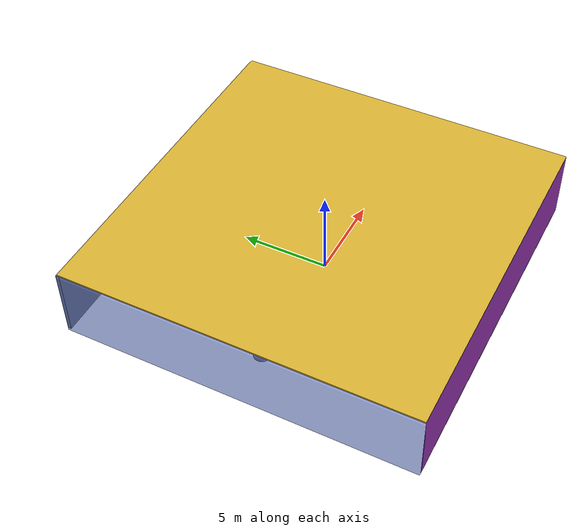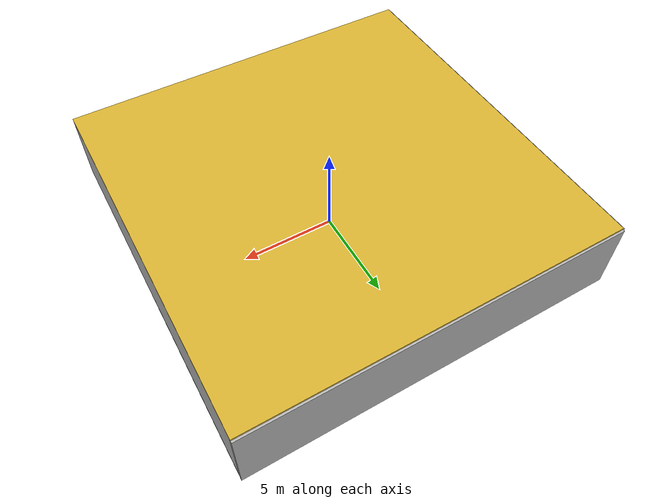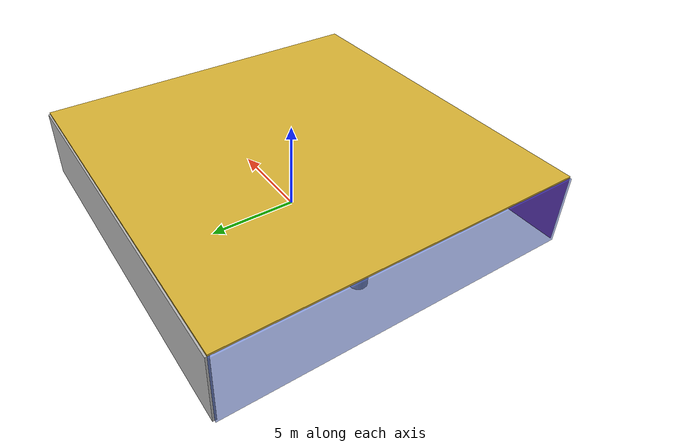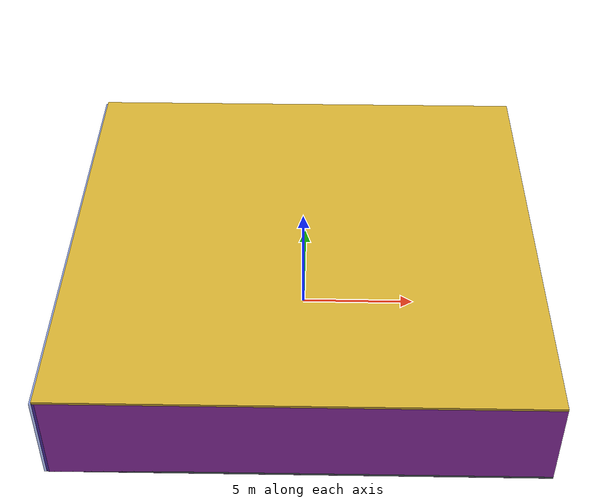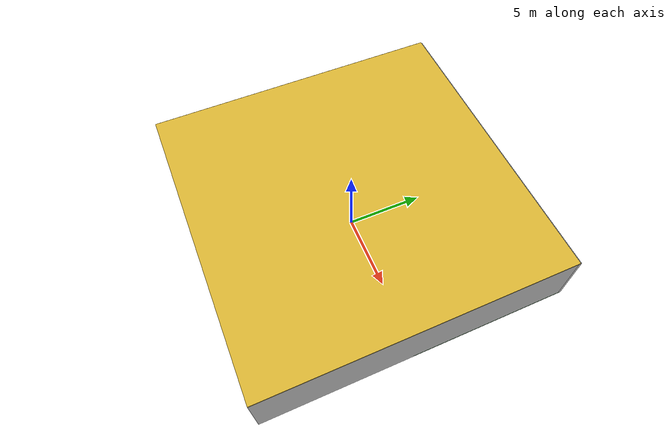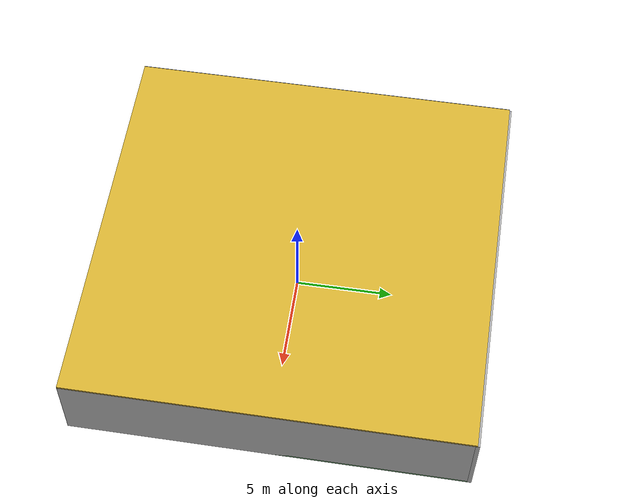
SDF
<sdf version="1.4">
 <world name="default">
  <physics type="ode">
   <max_step_size>0.001</max_step_size>
   <real_time_factor>1</real_time_factor>
   <real_time_update_rate>1000</real_time_update_rate>
   <gravity>0 0 -9.8</gravity>
  </physics>
  <scene><ambient>0.4 0.4 0.4 1</ambient><background>0.7 0.7 0.7 1</background><shadows>1</shadows></scene>
  <model name="Surrounding">
   <static>1</static>
   <link name="Ceiling">
    <collision name="Ceiling_Collision"><geometry><box><size>20 20 0.1</size></box></geometry></collision>
    <visual name="Ceiling_Visual">
     <geometry><box><size>20 20 0.1</size></box></geometry>
     <material>
      <script><uri>file://media/materials/scripts/gazebo.material</uri><name>Gazebo/Gold</name></script>
     </material>
    </visual>
    <pose>0 0 4.05 0 0 0</pose>
   </link>
   <link name="Wall_South">
    <collision name="Wall_South_Collision">
     <geometry><box><size>20 0 4</size></box></geometry>
     <pose>0 0 2 0 -0 0</pose>
    </collision>
    <visual name="Wall_South_Visual">
     <pose>0 0 2 0 -0 0</pose>
     <geometry><box><size>20 0 4</size></box></geometry>
     <material>
      <script><uri>file://media/materials/scripts/gazebo.material</uri><name>Gazebo/PurpleGlow</name></script>
     </material>
    </visual>
    <velocity_decay><linear>0</linear><angular>0</angular></velocity_decay>
    <pose>0 -10 0 0 -0 0</pose>
   </link>
   <link name="Wall_East">
    <collision name="Wall_21_Collision">
     <geometry><box><size>20 0 4</size></box></geometry>
     <pose>0 0 2 0 -0 0</pose>
    </collision>
    <visual name="Wall_21_Visual">
     <pose>0 0 2 0 -0 0</pose>
     <geometry><box><size>20 0 4</size></box></geometry>
     <material>
      <script><uri>file://media/materials/scripts/gazebo.material</uri><name>Gazebo/CloudySky</name></script>
     </material>
    </visual>
    <velocity_decay><linear>0</linear><angular>0</angular></velocity_decay>
    <pose>10 0 0 0 -0 1.5708</pose>
   </link>
   <link name="Wall_North">
    <collision name="Wall_22_Collision">
     <geometry><box><size>20 0.2 4</size></box></geometry>
     <pose>0 0 2 0 -0 0</pose>
    </collision>
    <visual name="Wall_22_Visual">
     <pose>0 0 2 0 -0 0</pose>
     <geometry><box><size>20 0.2 4</size></box></geometry>
     <material>
      <script><uri>file://media/materials/scripts/gazebo.material</uri><name>Gazebo/LightOff</name></script>
     </material>
    </visual>
    <velocity_decay><linear>0</linear><angular>0</angular></velocity_decay>
    <pose>0 10 0 0 -0 0</pose>
   </link>
   <link name="Wall_West">
    <collision name="Wall_23_Collision">
     <geometry><box><size>20 0.2 4</size></box></geometry>
     <pose>0 0 2 0 -0 0</pose>
    </collision>
    <visual name="Wall_23_Visual">
     <pose>0 0 2 0 -0 0</pose>
     <geometry><box><size>20 0.2 4</size></box></geometry>
     <material>
      <script><uri>file://media/materials/scripts/gazebo.material</uri><name>Gazebo/BlueTransparent</name></script>
     </material>
    </visual>
    <velocity_decay><linear>0</linear><angular>0</angular></velocity_decay>
    <pose>-10 0 0 0 0 -1.5708</pose>
   </link>
   <link name="Ground_link">
    <collision name="collision">
     <pose>0 0 .05 0 -0 0</pose>
     <geometry><box><size>20 20 0.1</size></box></geometry>
    </collision>
    <visual name="visual">
     <pose>0 0 .05 0 -0 0</pose>
     <geometry><box><size>20 20 0.1</size></box></geometry>
     <material>
      <script><uri>file://media/materials/scripts/gazebo.material</uri><name>Gazebo/GreenTransparent</name></script>
     </material>
    </visual>
   </link>
   <static>1</static>
  </model>
  <spherical_coordinates>
   <surface_model>EARTH_WGS84</surface_model>
   <latitude_deg>0</latitude_deg>
   <longitude_deg>0</longitude_deg>
   <elevation>0</elevation>
   <heading_deg>0</heading_deg>
  </spherical_coordinates>
  <light name="lightball_0" type="diffuse">
   <diffuse>0.8 0.8 0.8 1</diffuse>
   <specular>0.2 0.2 0.2 1</specular>
   <attenuation>
    <range>100</range>
    <constant>0.7</constant>
    <linear>0.01</linear>
    <quadratic>0.001</quadratic>
   </attenuation>
   <direction>-0.5 0.1 -0.9</direction>
   <pose>7.1229206361 -0.307471380585 3.60209983434 0 0 0</pose>
  </light>
  <light name="lightball_1" type="diffuse">
   <diffuse>0.8 0.8 0.8 1</diffuse>
   <specular>0.2 0.2 0.2 1</specular>
   <attenuation>
    <range>100</range>
    <constant>0.7</constant>
    <linear>0.01</linear>
    <quadratic>0.001</quadratic>
   </attenuation>
   <direction>-0.5 0.1 -0.9</direction>
   <pose>9.64368090815 -2.70732188863 1.05894427354 0 0 0</pose>
  </light>
  <light name="lightball_2" type="diffuse">
   <diffuse>0.8 0.8 0.8 1</diffuse>
   <specular>0.2 0.2 0.2 1</specular>
   <attenuation>
    <range>100</range>
    <constant>0.7</constant>
    <linear>0.01</linear>
    <quadratic>0.001</quadratic>
   </attenuation>
   <direction>-0.5 0.1 -0.9</direction>
   <pose>-7.05821752435 9.71758634796 1.00414615346 0 0 0</pose>
  </light>
  <include>
   <uri>model://textured_shapes</uri>
   <pose>-5.45348350106 -0.572533907363 0 0 0 0.947964748066</pose>
  </include>
  <include>
   <uri>model://textured_shapes</uri>
   <pose>-4.60339414097 5.30949880536 0 0 0 0.030507801337</pose>
  </include>
  <include><uri>model://cabinet</uri><pose>-1.3006616653 -8.08250036177 0 0 0 1.93304344664</pose></include>
  <include><uri>model://cabinet</uri><pose>-1.75617148396 -1.01105626154 0 0 0 1.46079989854</pose></include>
  <include>
   <uri>model://robocup_3Dsim_goal</uri>
   <pose>1.81719770309 -1.9935392264 0 0 0 2.9785255646</pose>
  </include>
  <include><uri>model://table</uri><pose>5.32758330218 -3.35919101849 0 0 0 2.42582273988</pose></include>
  <include>
   <uri>model://robocup_3Dsim_goal</uri>
   <pose>5.05376183835 0.386133741961 0 0 0 2.1636185056</pose>
  </include>
  <include>
   <uri>model://construction_cone</uri>
   <pose>7.24086674606 8.66975009581 0 0 0 1.53472428825</pose>
  </include>
 </world>
</sdf>

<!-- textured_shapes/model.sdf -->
<sdf version="1.6">
  <model name="textured_shapes">
    <pose>0 0 0.5 0 0 0</pose>
    <link name="box">
      <pose>0 -1.5 0 0 0 0</pose>
      <collision name="collision">
        <geometry>
          <box>
            <size>1 1 1</size>
          </box>
        </geometry>
      </collision>
      <visual name="visual">
        <geometry>
          <box>
            <size>1 1 1</size>
          </box>
        </geometry>
        <material>
          <script>
            <uri>model://../model_source/models/textured_shapes/materials/scripts</uri>
            <uri>model://../model_source/models/textured_shapes/materials/textures</uri>
            <name>TexturedShape/Squares</name>
          </script>
        </material>
      </visual>
    </link>
    <link name="sphere">
      <collision name="collision">
        <geometry>
          <sphere>
            <radius>0.5</radius>
          </sphere>
        </geometry>
      </collision>
      <visual name="visual">
        <geometry>
          <sphere>
            <radius>0.5</radius>
          </sphere>
        </geometry>
        <material>
          <script>
            <uri>model://../model_source/models/textured_shapes/materials/scripts</uri>
            <uri>model://../model_source/models/textured_shapes/materials/textures</uri>
            <name>TexturedShape/Squares</name>
          </script>
        </material>
      </visual>
    </link>
    <link name="cylinder">
      <pose>0 1.5 0 0 0 0</pose>
      <collision name="collision">
        <geometry>
          <cylinder>
            <radius>0.5</radius>
            <length>1</length>
          </cylinder>
        </geometry>
      </collision>
      <visual name="visual">
        <geometry>
          <cylinder>
            <radius>0.5</radius>
            <length>1</length>
          </cylinder>
        </geometry>
        <material>
          <script>
            <uri>model://../model_source/models/textured_shapes/materials/scripts</uri>
            <uri>model://../model_source/models/textured_shapes/materials/textures</uri>
            <name>TexturedShape/Squares</name>
          </script>
        </material>
      </visual>
    </link>
  </model>
</sdf>

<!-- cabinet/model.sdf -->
<sdf version="1.5">
  <model name="cabinet">
    <static>true</static>
    <link name="cabinet_bottom_plate">
      <inertial>
        <pose>0 0 -1 0 0 0</pose>
        <inertia>
          <ixx>2.050000</ixx>
          <ixy>0</ixy>
          <ixz>0</ixz>
          <iyy>2.050000</iyy>
          <iyz>0</iyz>
          <izz>2.050000</izz>
        </inertia>
        <mass>25.000000</mass>
      </inertial>
      <collision name="cabinet_bottom_plate_geom">
        <pose>0 0 0.010000 0 0 0</pose>
        <geometry>
          <box>
            <size>0.450000 0.450000 0.020000</size>
          </box>
        </geometry>
      </collision>
      <visual name="cabinet_bottom_plate_geom_visual">
        <pose>0 0 0.010000 0 0 0</pose>
        <geometry>
          <box>
            <size>0.450000 0.450000 0.020000</size>
          </box>
        </geometry>
        <material>
          <script>
            <uri>model://media/materials/scripts/gazebo.material</uri>
            <name>Gazebo/Wood</name>
          </script>
        </material>
      </visual>
      <collision name="cabinet_bottom_plate_geom_cabinet_back_plate">
        <pose>0.235000 0 0.510000 0 0 0</pose>
        <geometry>
          <box>
            <size>0.020000 0.450000 1.020000</size>
          </box>
        </geometry>
      </collision>
      <visual name="cabinet_bottom_plate_geom_cabinet_back_plate_visual">
        <pose>0.235000 0 0.510000 0 0 0</pose>
        <geometry>
          <box>
            <size>0.020000 0.450000 1.020000</size>
          </box>
        </geometry>
        <material>
          <script>
            <uri>model://media/materials/scripts/gazebo.material</uri>
            <name>Gazebo/Wood</name>
          </script>
        </material>
      </visual>
      <collision name="cabinet_bottom_plate_geom_cabinet_left_plate">
        <pose>0 0.235000 0.510000 0 0 0</pose>
        <geometry>
          <box>
            <size>0.450000 0.020000 1.020000</size>
          </box>
        </geometry>
      </collision>
      <visual name="cabinet_bottom_plate_geom_cabinet_left_plate_visual">
        <pose>0 0.235000 0.510000 0 0 0</pose>
        <geometry>
          <box>
            <size>0.450000 0.020000 1.020000</size>
          </box>
        </geometry>
        <material>
          <script>
            <uri>model://media/materials/scripts/gazebo.material</uri>
            <name>Gazebo/Wood</name>
          </script>
        </material>
      </visual>
      <collision name="cabinet_bottom_plate_geom_cabinet_middle_plate">
        <pose>0 0 0.510000 0 0 0</pose>
        <geometry>
          <box>
            <size>0.450000 0.450000 0.020000</size>
          </box>
        </geometry>
      </collision>
      <visual name="cabinet_bottom_plate_geom_cabinet_middle_plate_visual">
        <pose>0 0 0.510000 0 0 0</pose>
        <geometry>
          <box>
            <size>0.450000 0.450000 0.020000</size>
          </box>
        </geometry>
        <material>
          <script>
            <uri>model://media/materials/scripts/gazebo.material</uri>
            <name>Gazebo/Wood</name>
          </script>
        </material>
      </visual>
      <collision name="cabinet_bottom_plate_geom_cabinet_right_plate">
        <pose>0 -0.235000 0.510000 0 0 0</pose>
        <geometry>
          <box>
            <size>0.450000 0.020000 1.020000</size>
          </box>
        </geometry>
      </collision>
      <visual name="cabinet_bottom_plate_geom_cabinet_right_plate_visual">
        <pose>0 -0.235000 0.510000 0 0 0</pose>
        <geometry>
          <box>
            <size>0.450000 0.020000 1.020000</size>
          </box>
        </geometry>
        <material>
          <script>
            <uri>model://media/materials/scripts/gazebo.material</uri>
            <name>Gazebo/Wood</name>
          </script>
        </material>
      </visual>
      <collision name="cabinet_bottom_plate_geom_cabinet_top_plate">
        <pose>0 0 1.010000 0 0 0</pose>
        <geometry>
          <box>
            <size>0.450000 0.450000 0.020000</size>
          </box>
        </geometry>
      </collision>
      <visual name="cabinet_bottom_plate_geom_cabinet_top_plate_visual">
        <pose>0 0 1.010000 0 0 0</pose>
        <geometry>
          <box>
            <size>0.450000 0.450000 0.020000</size>
          </box>
        </geometry>
        <material>
          <script>
            <uri>model://media/materials/scripts/gazebo.material</uri>
            <name>Gazebo/Wood</name>
          </script>
        </material>
      </visual>
    </link>
  </model>
</sdf>

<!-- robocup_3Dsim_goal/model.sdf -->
<sdf version="1.5">
  <model name="robocup_3d_goal">
    <static>true</static>
    <link name="left_post">
      <pose>0 1.05 0.45 0 0 0</pose>
      <collision name="collision">
        <geometry>
          <cylinder>
            <radius>0.05</radius>
            <length>0.9</length>
          </cylinder>
        </geometry>
      </collision>
      <visual name="visual">
        <geometry>
          <cylinder>
            <radius>0.05</radius>
            <length>0.9</length>
          </cylinder>
        </geometry>
        <material>
          <script>
            <uri>file://media/materials/scripts/gazebo.material</uri>
            <name>Gazebo/ZincYellow</name>
          </script>
        </material>
      </visual>
    </link>
    <link name="left_support_horiz_lower">
      <pose>0.30 1.05 0.01 0 0 0</pose>
      <collision name="collision">
        <geometry>
          <box>
            <size>0.50 0.02 0.02</size>
          </box>
        </geometry>
      </collision>
      <visual name="visual">
        <geometry>
          <box>
            <size>0.50 0.02 0.02</size>
          </box>
        </geometry>
        <material>
          <script>
            <uri>file://media/materials/scripts/gazebo.material</uri>
            <name>Gazebo/White</name>
          </script>
        </material>
      </visual>
    </link>
    <link name="left_support_horiz_upper">
      <pose>0.30 1.05 0.79 0 0 0</pose>
      <collision name="collision">
        <geometry>
          <box>
            <size>0.50 0.02 0.02</size>
          </box>
        </geometry>
      </collision>
      <visual name="visual">
        <geometry>
          <box>
            <size>0.50 0.02 0.02</size>
          </box>
        </geometry>
        <material>
          <script>
            <uri>file://media/materials/scripts/gazebo.material</uri>
            <name>Gazebo/White</name>
          </script>
        </material>
      </visual>
    </link>
    <link name="left_support_vertical">
      <pose>0.56 1.05 0.4 0 1.5708 0</pose>
      <collision name="collision">
        <geometry>
          <box>
            <size>0.80 0.02 0.02</size>
          </box>
        </geometry>
      </collision>
      <visual name="visual">
        <geometry>
          <box>
            <size>0.80 0.02 0.02</size>
          </box>
        </geometry>
        <material>
          <script>
            <uri>file://media/materials/scripts/gazebo.material</uri>
            <name>Gazebo/White</name>
          </script>
        </material>
      </visual>
    </link>
    <link name="right_support_horiz_lower">
      <pose>0.30 -1.05 0.01 0 0 0</pose>
      <collision name="collision">
        <geometry>
          <box>
            <size>0.50 0.02 0.02</size>
          </box>
        </geometry>
      </collision>
      <visual name="visual">
        <geometry>
          <box>
            <size>0.50 0.02 0.02</size>
          </box>
        </geometry>
        <material>
          <script>
            <uri>file://media/materials/scripts/gazebo.material</uri>
            <name>Gazebo/White</name>
          </script>
        </material>
      </visual>
    </link>
    <link name="right_support_horiz_upper">
      <pose>0.30 -1.05 0.79 0 0 0</pose>
      <collision name="collision">
        <geometry>
          <box>
            <size>0.50 0.02 0.02</size>
          </box>
        </geometry>
      </collision>
      <visual name="visual">
        <geometry>
          <box>
            <size>0.50 0.02 0.02</size>
          </box>
        </geometry>
        <material>
          <script>
            <uri>file://media/materials/scripts/gazebo.material</uri>
            <name>Gazebo/White</name>
          </script>
        </material>
      </visual>
    </link>
    <link name="right_support_vertical">
      <pose>0.56 -1.05 0.4 0 1.5708 0</pose>
      <collision name="collision">
        <geometry>
          <box>
            <size>0.80 0.02 0.02</size>
          </box>
        </geometry>
      </collision>
      <visual name="visual">
        <geometry>
          <box>
            <size>0.80 0.02 0.02</size>
          </box>
        </geometry>
        <material>
          <script>
            <uri>file://media/materials/scripts/gazebo.material</uri>
            <name>Gazebo/White</name>
          </script>
        </material>
      </visual>
    </link>
    <link name="center_support_horiz_lower">
      <pose>0.56 0 0.01 0 1.5708 0</pose>
      <collision name="collision">
        <geometry>
          <box>
            <size>0.02 2.08 0.02</size>
          </box>
        </geometry>
      </collision>
      <visual name="visual">
        <geometry>
          <box>
            <size>0.02 2.08 0.02</size>
          </box>
        </geometry>
        <material>
          <script>
            <uri>file://media/materials/scripts/gazebo.material</uri>
            <name>Gazebo/White</name>
          </script>
        </material>
      </visual>
    </link>
    <link name="center_support_horiz_upper">
      <pose>0.56 0 0.79 0 1.5708 0</pose>
      <collision name="collision">
        <geometry>
          <box>
            <size>0.02 2.08 0.02</size>
          </box>
        </geometry>
      </collision>
      <visual name="visual">
        <geometry>
          <box>
            <size>0.02 2.08 0.02</size>
          </box>
        </geometry>
        <material>
          <script>
            <uri>file://media/materials/scripts/gazebo.material</uri>
            <name>Gazebo/White</name>
          </script>
        </material>
      </visual>
    </link>
    <link name="right_post">
      <pose>0 -1.05 0.45 0 0 0</pose>
      <collision name="collision">
        <geometry>
          <cylinder>
            <radius>0.05</radius>
            <length>0.9</length>
          </cylinder>
        </geometry>
      </collision>
      <visual name="visual">
        <geometry>
          <cylinder>
            <radius>0.05</radius>
            <length>0.9</length>
          </cylinder>
        </geometry>
        <material>
          <script>
            <uri>file://media/materials/scripts/gazebo.material</uri>
            <name>Gazebo/ZincYellow</name>
          </script>
        </material>
      </visual>
    </link>
    <link name="crossbar">
      <pose>0 0 0.85 1.57 1.57 0</pose>
      <collision name="collision">
        <geometry>
          <cylinder>
            <radius>0.05</radius>
            <length>2.0</length>
          </cylinder>
        </geometry>
      </collision>
      <visual name="visual">
        <geometry>
          <cylinder>
            <radius>0.05</radius>
            <length>2.0</length>
          </cylinder>
        </geometry>
        <material>
          <script>
            <uri>file://media/materials/scripts/gazebo.material</uri>
            <name>Gazebo/ZincYellow</name>
          </script>
        </material>
      </visual>
    </link>
    <link name="center_net">
      <pose>0.56 0 0.40 0 0 0</pose>
      <collision name="collision">
        <geometry>
          <box>
            <size>0.01 2.1 0.80</size>
          </box>
        </geometry>
      </collision>
      <visual name="visual">
        <geometry>
          <box>
            <size>0.01 2.1 0.80</size>
          </box>
        </geometry>
        <material>
          <script>
            <uri>model://../model_source/models/robocup09_spl_field/materials/scripts/</uri>
            <uri>model://../model_source/models/robocup09_spl_field/materials/textures/</uri>
            <name>RoboCup/Net</name>
          </script>
        </material>
      </visual>
    </link>
    <link name="left_net">
      <pose>0.30 1.05 0.40 0 0 0</pose>
      <collision name="collision">
        <geometry>
          <box>
            <size>0.50 0.01 0.76</size>
          </box>
        </geometry>
      </collision>
      <visual name="visual">
        <geometry>
          <box>
            <size>0.50 0.01 0.76</size>
          </box>
        </geometry>
        <material>
          <script>
            <uri>model://../model_source/models/robocup09_spl_field/materials/scripts/</uri>
            <uri>model://../model_source/models/robocup09_spl_field/materials/textures/</uri>
            <name>RoboCup/Net</name>
          </script>
        </material>
      </visual>
    </link>
    <link name="right_net">
      <pose>0.30 -1.05 0.40 0 0 0</pose>
      <collision name="collision">
        <geometry>
          <box>
            <size>0.50 0.01 0.76</size>
          </box>
        </geometry>
      </collision>
      <visual name="visual">
        <geometry>
          <box>
            <size>0.50 0.01 0.76</size>
          </box>
        </geometry>
        <material>
          <script>
            <uri>model://../model_source/models/robocup09_spl_field/materials/scripts/</uri>
            <uri>model://../model_source/models/robocup09_spl_field/materials/textures/</uri>
            <name>RoboCup/Net</name>
          </script>
        </material>
      </visual>
    </link>
  </model>
</sdf>

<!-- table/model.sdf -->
<sdf version="1.5">
  <model name="table">
    <static>true</static>
    <link name="link">
      <collision name="surface">
        <pose>0 0 1.0 0 0 0</pose>
        <geometry>
          <box>
            <size>1.5 0.8 0.03</size>
          </box>
        </geometry>
        <surface>
          <friction>
            <ode>
              <mu>0.6</mu>
              <mu2>0.6</mu2>
            </ode>
          </friction>
        </surface>
      </collision>
      <visual name="visual1">
        <pose>0 0 1.0 0 0 0</pose>
        <geometry>
          <box>
            <size>1.5 0.8 0.03</size>
          </box>
        </geometry>
        <material>
          <script>
            <uri>model://media/materials/scripts/gazebo.material</uri>
            <name>Gazebo/Wood</name>
          </script>
        </material>
      </visual>
      <collision name="front_left_leg">
        <pose>0.68 0.38 0.5 0 0 0</pose>
        <geometry>
          <cylinder>
            <radius>0.02</radius>
            <length>1.0</length>
          </cylinder>
        </geometry>
      </collision>
      <visual name="front_left_leg">
        <pose>0.68 0.38 0.5 0 0 0</pose>
        <geometry>
          <cylinder>
            <radius>0.02</radius>
            <length>1.0</length>
          </cylinder>
        </geometry>
        <material>
          <script>
            <uri>model://media/materials/scripts/gazebo.material</uri>
            <name>Gazebo/Grey</name>
          </script>
        </material>
      </visual>
      <collision name="front_right_leg">
        <pose>0.68 -0.38 0.5 0 0 0</pose>
        <geometry>
          <cylinder>
            <radius>0.02</radius>
            <length>1.0</length>
          </cylinder>
        </geometry>
      </collision>
      <visual name="front_right_leg">
        <pose>0.68 -0.38 0.5 0 0 0</pose>
        <geometry>
          <cylinder>
            <radius>0.02</radius>
            <length>1.0</length>
          </cylinder>
        </geometry>
        <material>
          <script>
            <uri>model://media/materials/scripts/gazebo.material</uri>
            <name>Gazebo/Grey</name>
          </script>
        </material>
      </visual>
      <collision name="back_right_leg">
        <pose>-0.68 -0.38 0.5 0 0 0</pose>
        <geometry>
          <cylinder>
            <radius>0.02</radius>
            <length>1.0</length>
          </cylinder>
        </geometry>
      </collision>
      <visual name="back_right_leg">
        <pose>-0.68 -0.38 0.5 0 0 0</pose>
        <geometry>
          <cylinder>
            <radius>0.02</radius>
            <length>1.0</length>
          </cylinder>
        </geometry>
        <material>
          <script>
            <uri>model://media/materials/scripts/gazebo.material</uri>
            <name>Gazebo/Grey</name>
          </script>
        </material>
      </visual>
      <collision name="back_left_leg">
        <pose>-0.68 0.38 0.5 0 0 0</pose>
        <geometry>
          <cylinder>
            <radius>0.02</radius>
            <length>1.0</length>
          </cylinder>
        </geometry>
      </collision>
      <visual name="back_left_leg">
        <pose>-0.68 0.38 0.5 0 0 0</pose>
        <geometry>
          <cylinder>
            <radius>0.02</radius>
            <length>1.0</length>
          </cylinder>
        </geometry>
        <material>
          <script>
            <uri>model://media/materials/scripts/gazebo.material</uri>
            <name>Gazebo/Grey</name>
          </script>
        </material>
      </visual>
    </link>
  </model>
</sdf>

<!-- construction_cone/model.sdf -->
<sdf version="1.5">
  <model name="Construction Cone">
    <link name="link">
      <collision name="collision">
        <geometry>
          <mesh>
            <scale>10 10 10</scale>
            <uri>file://isr-testbed/construction_cone/meshes/construction_cone.dae</uri>
          </mesh>
        </geometry>
      </collision>
      <visual name="visual">
        <geometry>
          <mesh>
            <scale>10 10 10</scale>
            <uri>file://isr-testbed/construction_cone/meshes/construction_cone.dae</uri>
          </mesh>
        </geometry>
      </visual>
    </link>
  </model>
</sdf>
